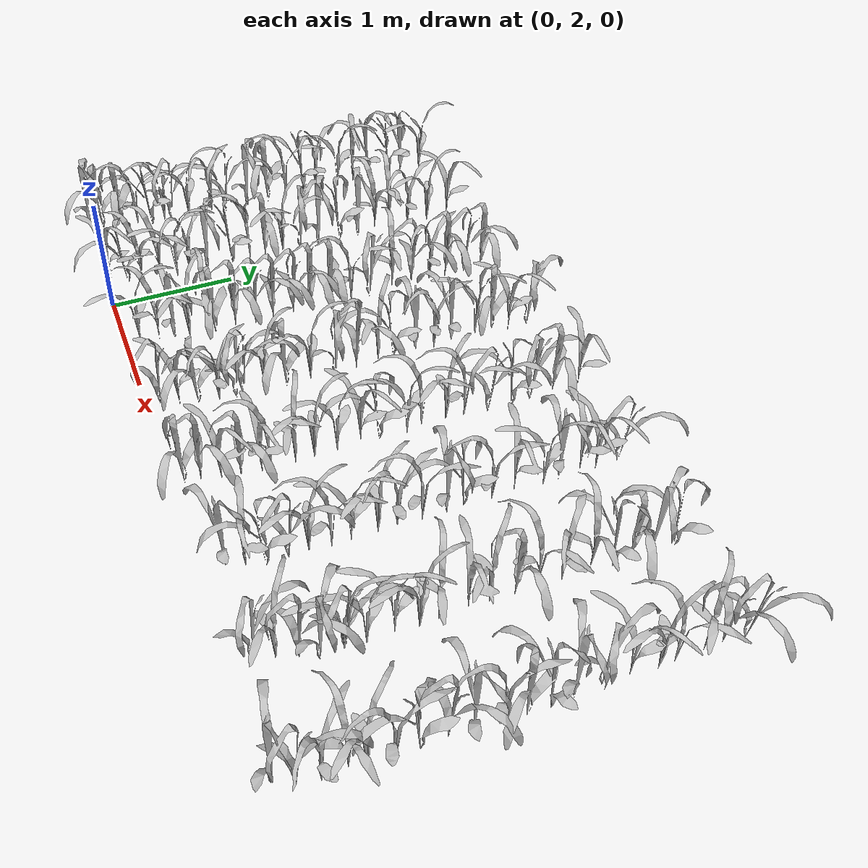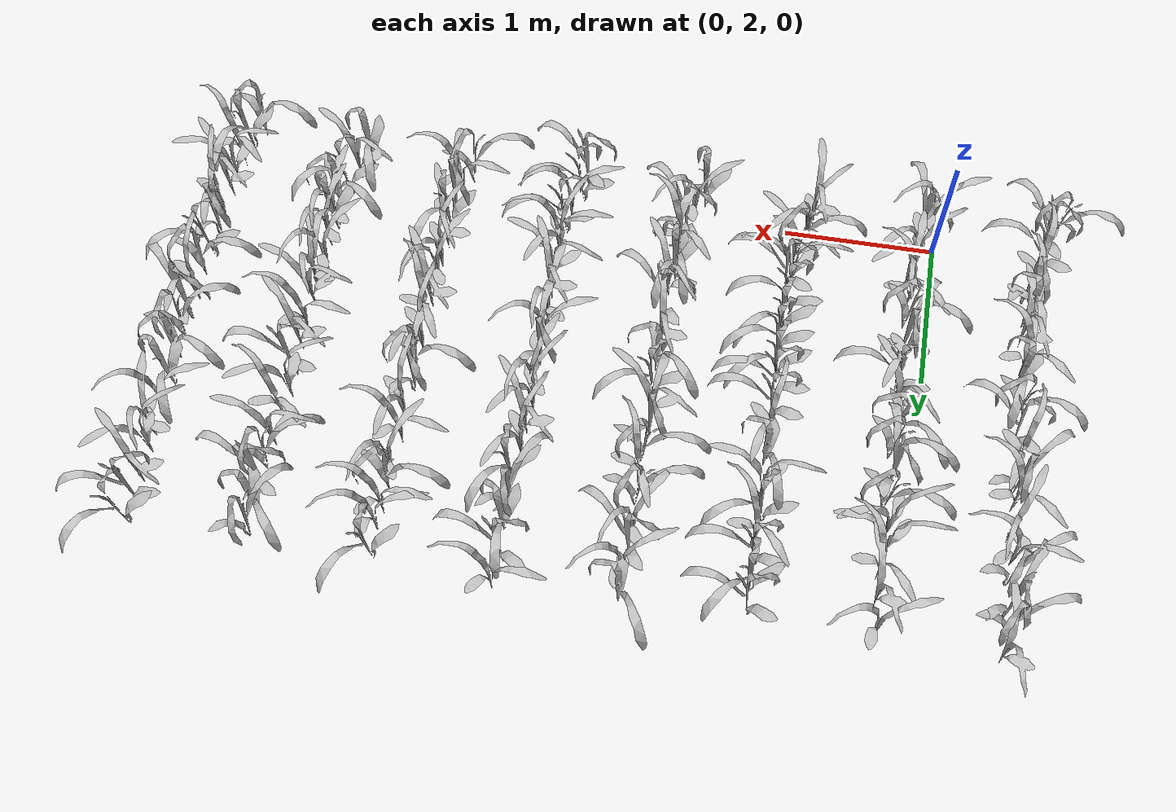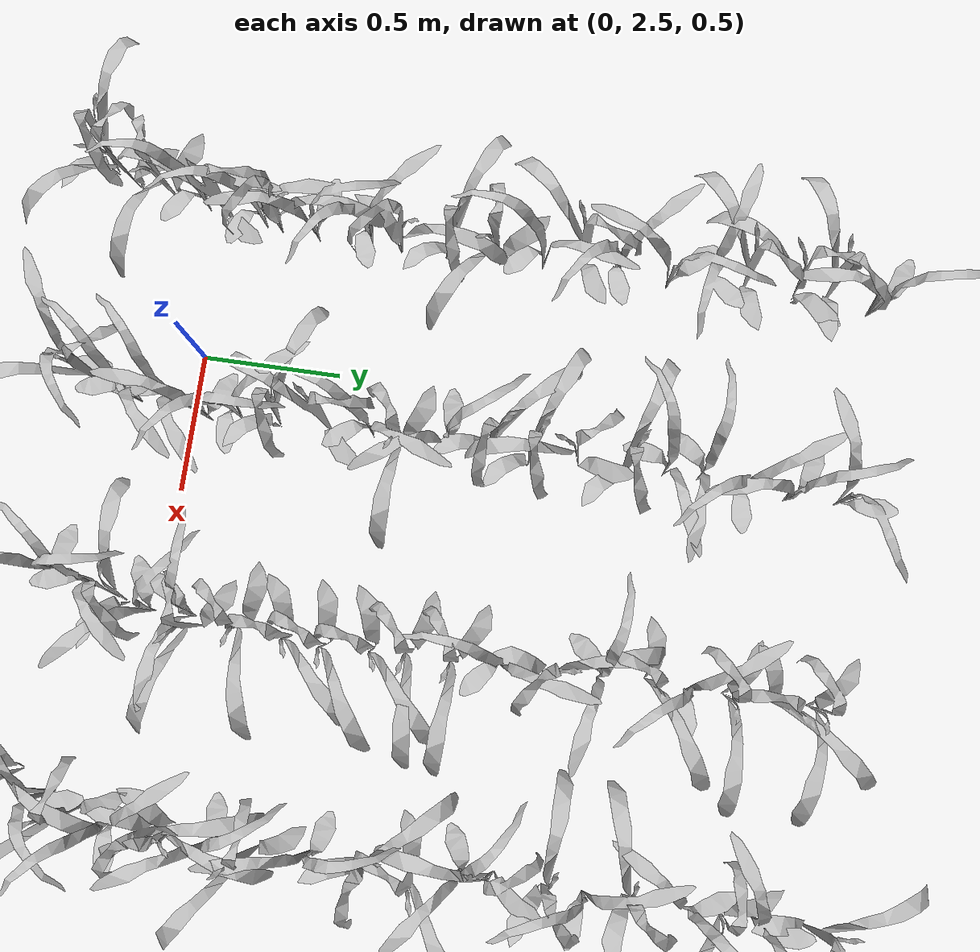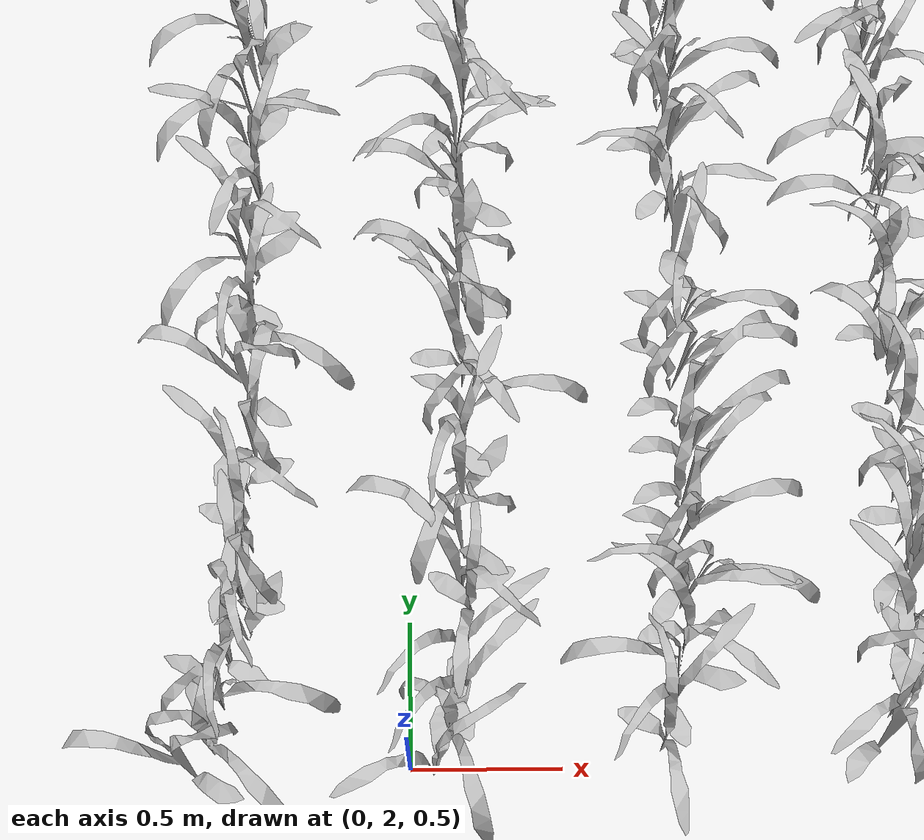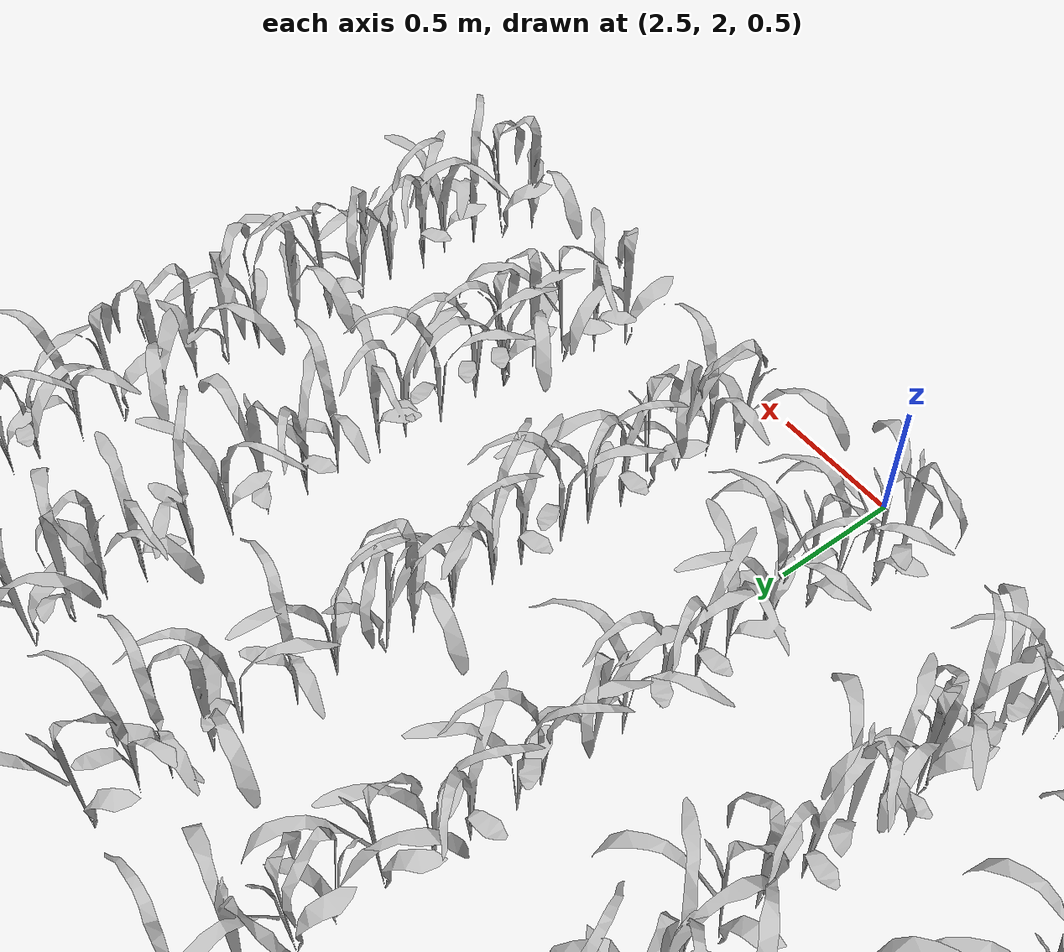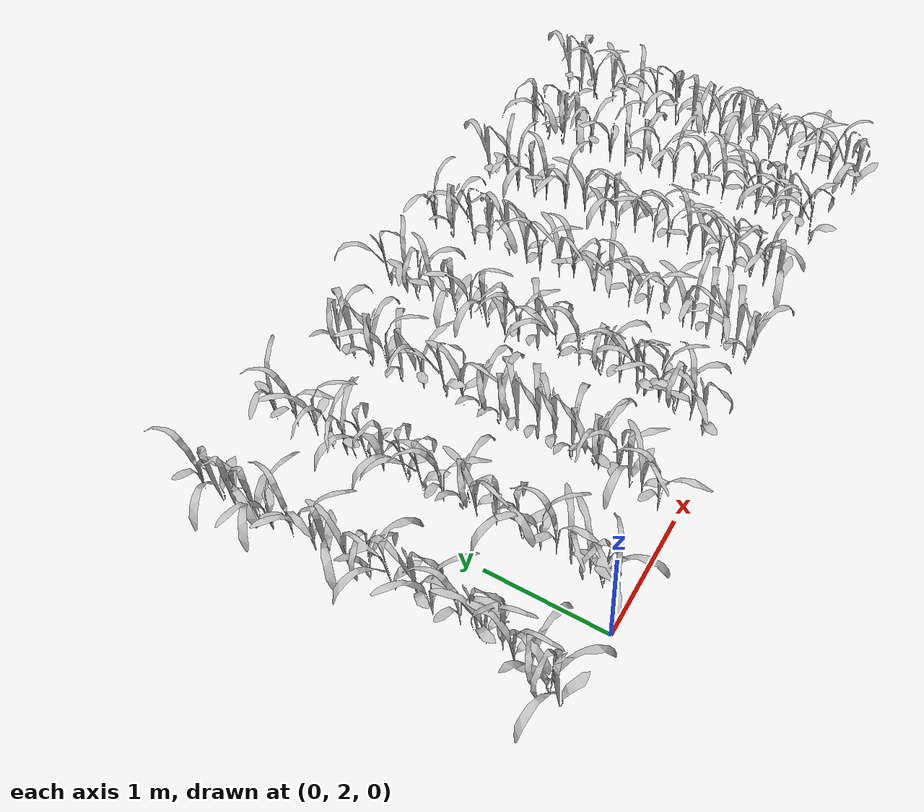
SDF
<sdf version="1.6">
 <world name="default">
  <include>
   <uri>model://maize_01</uri>
   <pose>-0.7104168748805322 2.0063185588696855 0.3010633590603995 0.0 0.0 3.7684076181271933</pose>
   <name>maize_01_0268</name>
   <static>true</static>
  </include>
  <include>
   <uri>model://maize_01</uri>
   <pose>-0.6669237764281026 2.096829508892172 0.3010633590603995 0.0 0.0 6.258730410717391</pose>
   <name>maize_01_0269</name>
   <static>true</static>
  </include>
  <include>
   <uri>model://maize_01</uri>
   <pose>-0.6391963472273512 2.2519567084628735 0.3010633590603995 0.0 0.0 0.6030754324325011</pose>
   <name>maize_01_0270</name>
   <static>true</static>
  </include>
  <include>
   <uri>model://maize_02</uri>
   <pose>-0.6080819507559225 2.3843249816992382 0.3010633590603995 0.0 0.0 3.6879440757164343</pose>
   <name>maize_02_0271</name>
   <static>true</static>
  </include>
  <include>
   <uri>model://maize_01</uri>
   <pose>-0.5637190190671053 2.496584956805511 0.3010633590603995 0.0 0.0 5.22597457695678</pose>
   <name>maize_01_0272</name>
   <static>true</static>
  </include>
  <include>
   <uri>model://maize_02</uri>
   <pose>-0.5755097761306722 2.6089903518456476 0.3010633590603995 0.0 0.0 3.8904030261536358</pose>
   <name>maize_02_0273</name>
   <static>true</static>
  </include>
  <include>
   <uri>model://maize_01</uri>
   <pose>-0.5633656847608133 2.66923461378275 0.3010633590603995 0.0 0.0 2.32956203903306</pose>
   <name>maize_01_0274</name>
   <static>true</static>
  </include>
  <include>
   <uri>model://maize_02</uri>
   <pose>-0.5532574011716205 2.8142239306333354 0.30074714917522627 0.0 0.0 0.767674930427045</pose>
   <name>maize_02_0275</name>
   <static>true</static>
  </include>
  <include>
   <uri>model://maize_02</uri>
   <pose>-0.5694372217213404 3.017604965068602 0.30074714917522627 0.0 0.0 4.564268487871051</pose>
   <name>maize_02_0276</name>
   <static>true</static>
  </include>
  <include>
   <uri>model://maize_01</uri>
   <pose>-0.5434452594882406 3.136102062432505 0.30074714917522627 0.0 0.0 2.189472245221957</pose>
   <name>maize_01_0277</name>
   <static>true</static>
  </include>
  <include>
   <uri>model://maize_01</uri>
   <pose>-0.5469666606167201 3.3327189906338064 0.30074714917522627 0.0 0.0 3.5292269398621445</pose>
   <name>maize_01_0278</name>
   <static>true</static>
  </include>
  <include>
   <uri>model://maize_01</uri>
   <pose>-0.5553727999207514 3.5139043821364724 0.30074714917522627 0.0 0.0 0.2592390515390904</pose>
   <name>maize_01_0279</name>
   <static>true</static>
  </include>
  <include>
   <uri>model://maize_02</uri>
   <pose>-0.5632371757496302 3.679780825754396 0.30041964803791277 0.0 0.0 3.504077575110449</pose>
   <name>maize_02_0280</name>
   <static>true</static>
  </include>
  <include>
   <uri>model://maize_01</uri>
   <pose>-0.570478753203626 3.843828672415269 0.30041964803791277 0.0 0.0 4.749446662765805</pose>
   <name>maize_01_0281</name>
   <static>true</static>
  </include>
  <include>
   <uri>model://maize_02</uri>
   <pose>-0.5630768682914515 3.9588142486000018 0.30041964803791277 0.0 0.0 4.538791601472109</pose>
   <name>maize_02_0282</name>
   <static>true</static>
  </include>
  <include>
   <uri>model://maize_02</uri>
   <pose>-0.5516770795695114 4.156261171388559 0.30041964803791277 0.0 0.0 0.24420177757637626</pose>
   <name>maize_02_0283</name>
   <static>true</static>
  </include>
  <include>
   <uri>model://maize_02</uri>
   <pose>-0.5759459646778782 4.307883810789594 0.3008106686263826 0.0 0.0 5.055452928544781</pose>
   <name>maize_02_0284</name>
   <static>true</static>
  </include>
  <include>
   <uri>model://maize_01</uri>
   <pose>-0.5628849523354511 4.443718959324457 0.3008106686263826 0.0 0.0 4.55190990658463</pose>
   <name>maize_01_0285</name>
   <static>true</static>
  </include>
  <include>
   <uri>model://maize_01</uri>
   <pose>-0.5666547450391801 4.637151082916413 0.3008106686263826 0.0 0.0 5.088720340446874</pose>
   <name>maize_01_0286</name>
   <static>true</static>
  </include>
  <include>
   <uri>model://maize_01</uri>
   <pose>-0.5622938106335915 4.754447205869603 0.3008106686263826 0.0 0.0 4.337687330857094</pose>
   <name>maize_01_0287</name>
   <static>true</static>
  </include>
  <include>
   <uri>model://maize_02</uri>
   <pose>-0.5493978529502057 4.9251124244032205 0.2994590075733109 0.0 0.0 0.6869890573650961</pose>
   <name>maize_02_0288</name>
   <static>true</static>
  </include>
  <include>
   <uri>model://maize_02</uri>
   <pose>0.07364542335664506 2.0201080784856766 0.300323468426876 0.0 0.0 5.780354158975591</pose>
   <name>maize_02_0341</name>
   <static>true</static>
  </include>
  <include>
   <uri>model://maize_01</uri>
   <pose>0.1293928268966316 2.1422616085747674 0.300323468426876 0.0 0.0 5.785073879324697</pose>
   <name>maize_01_0342</name>
   <static>true</static>
  </include>
  <include>
   <uri>model://maize_02</uri>
   <pose>0.16631761949525162 2.2531739653369827 0.300323468426876 0.0 0.0 2.9564192831522313</pose>
   <name>maize_02_0343</name>
   <static>true</static>
  </include>
  <include>
   <uri>model://maize_02</uri>
   <pose>0.16880439795076121 2.39954708689957 0.300323468426876 0.0 0.0 2.7979902014193665</pose>
   <name>maize_02_0344</name>
   <static>true</static>
  </include>
  <include>
   <uri>model://maize_02</uri>
   <pose>0.19993727220433913 2.5301237698677324 0.300323468426876 0.0 0.0 0.5076738311743865</pose>
   <name>maize_02_0345</name>
   <static>true</static>
  </include>
  <include>
   <uri>model://maize_02</uri>
   <pose>0.17681815629607403 2.6400719484024315 0.300323468426876 0.0 0.0 4.4437352961948715</pose>
   <name>maize_02_0346</name>
   <static>true</static>
  </include>
  <include>
   <uri>model://maize_01</uri>
   <pose>0.18464876392405374 2.788223505292548 0.300323468426876 0.0 0.0 3.5657900557942437</pose>
   <name>maize_01_0347</name>
   <static>true</static>
  </include>
  <include>
   <uri>model://maize_01</uri>
   <pose>0.1835941995213133 2.990317470487524 0.300323468426876 0.0 0.0 5.102680733913312</pose>
   <name>maize_01_0348</name>
   <static>true</static>
  </include>
  <include>
   <uri>model://maize_02</uri>
   <pose>0.17875782819366995 3.1417943618442377 0.300323468426876 0.0 0.0 3.360407737718987</pose>
   <name>maize_02_0349</name>
   <static>true</static>
  </include>
  <include>
   <uri>model://maize_01</uri>
   <pose>0.19723953512701867 3.2639004083725944 0.300323468426876 0.0 0.0 0.7524924243371667</pose>
   <name>maize_01_0350</name>
   <static>true</static>
  </include>
  <include>
   <uri>model://maize_02</uri>
   <pose>0.18504524265489833 3.419030219604372 0.300323468426876 0.0 0.0 1.1738430190266311</pose>
   <name>maize_02_0351</name>
   <static>true</static>
  </include>
  <include>
   <uri>model://maize_01</uri>
   <pose>0.17652185067002327 3.5767140693248476 0.300323468426876 0.0 0.0 3.134169742714085</pose>
   <name>maize_01_0352</name>
   <static>true</static>
  </include>
  <include>
   <uri>model://maize_01</uri>
   <pose>0.20101225586346752 3.729420715057968 0.300323468426876 0.0 0.0 3.551281761742024</pose>
   <name>maize_01_0353</name>
   <static>true</static>
  </include>
  <include>
   <uri>model://maize_01</uri>
   <pose>0.17688097386044868 3.915859319539163 0.300323468426876 0.0 0.0 5.6563190226773585</pose>
   <name>maize_01_0354</name>
   <static>true</static>
  </include>
  <include>
   <uri>model://maize_01</uri>
   <pose>0.20768754038693496 4.074686292607202 0.30162232631317165 0.0 0.0 3.6394106442904897</pose>
   <name>maize_01_0355</name>
   <static>true</static>
  </include>
  <include>
   <uri>model://maize_02</uri>
   <pose>0.1727384290280687 4.229571016372324 0.30162232631317165 0.0 0.0 2.5417518617017567</pose>
   <name>maize_02_0356</name>
   <static>true</static>
  </include>
  <include>
   <uri>model://maize_02</uri>
   <pose>0.17487892178403744 4.3556441452405394 0.30162232631317165 0.0 0.0 2.0825873800725985</pose>
   <name>maize_02_0357</name>
   <static>true</static>
  </include>
  <include>
   <uri>model://maize_02</uri>
   <pose>0.2038096352124217 4.516729495424613 0.30162232631317165 0.0 0.0 4.338660429485556</pose>
   <name>maize_02_0358</name>
   <static>true</static>
  </include>
  <include>
   <uri>model://maize_02</uri>
   <pose>0.200739796976978 4.6913755121446545 0.30162232631317165 0.0 0.0 0.8516246777818097</pose>
   <name>maize_02_0359</name>
   <static>true</static>
  </include>
  <include>
   <uri>model://maize_02</uri>
   <pose>0.18971544738004978 4.880112229279497 0.30162232631317165 0.0 0.0 5.698829630777716</pose>
   <name>maize_02_0360</name>
   <static>true</static>
  </include>
  <include>
   <uri>model://maize_02</uri>
   <pose>0.8363458785067344 2.0837414664773894 0.300992767274991 0.0 0.0 0.70085824550902</pose>
   <name>maize_02_0414</name>
   <static>true</static>
  </include>
  <include>
   <uri>model://maize_02</uri>
   <pose>0.8712915556882235 2.2241604800575554 0.300992767274991 0.0 0.0 2.968559835449566</pose>
   <name>maize_02_0415</name>
   <static>true</static>
  </include>
  <include>
   <uri>model://maize_01</uri>
   <pose>0.9148934773690349 2.341326980028653 0.300992767274991 0.0 0.0 3.9450177654094025</pose>
   <name>maize_01_0416</name>
   <static>true</static>
  </include>
  <include>
   <uri>model://maize_02</uri>
   <pose>0.9336672087993383 2.4449961792568886 0.300992767274991 0.0 0.0 1.4074414380528006</pose>
   <name>maize_02_0417</name>
   <static>true</static>
  </include>
  <include>
   <uri>model://maize_02</uri>
   <pose>0.9329287198982701 2.593125786323888 0.300992767274991 0.0 0.0 2.0575773886699467</pose>
   <name>maize_02_0418</name>
   <static>true</static>
  </include>
  <include>
   <uri>model://maize_01</uri>
   <pose>0.9578020512220504 2.6377358002163525 0.300992767274991 0.0 0.0 0.5092241854526922</pose>
   <name>maize_01_0419</name>
   <static>true</static>
  </include>
  <include>
   <uri>model://maize_01</uri>
   <pose>0.9270206925219371 2.804173657964365 0.300992767274991 0.0 0.0 1.0278185108340143</pose>
   <name>maize_01_0420</name>
   <static>true</static>
  </include>
  <include>
   <uri>model://maize_01</uri>
   <pose>0.9510903033823002 2.959256189680105 0.300992767274991 0.0 0.0 1.595993399388448</pose>
   <name>maize_01_0421</name>
   <static>true</static>
  </include>
  <include>
   <uri>model://maize_01</uri>
   <pose>0.9582260329219288 3.097377151994604 0.300992767274991 0.0 0.0 1.3345423582682119</pose>
   <name>maize_01_0422</name>
   <static>true</static>
  </include>
  <include>
   <uri>model://maize_01</uri>
   <pose>0.9510803217539203 3.265605042007057 0.300992767274991 0.0 0.0 1.52404487840565</pose>
   <name>maize_01_0423</name>
   <static>true</static>
  </include>
  <include>
   <uri>model://maize_01</uri>
   <pose>0.9362755961553837 3.4068718374367877 0.300992767274991 0.0 0.0 0.890354288860797</pose>
   <name>maize_01_0424</name>
   <static>true</static>
  </include>
  <include>
   <uri>model://maize_01</uri>
   <pose>0.9431905243144942 3.5708901814026377 0.300992767274991 0.0 0.0 0.7377962141812818</pose>
   <name>maize_01_0425</name>
   <static>true</static>
  </include>
  <include>
   <uri>model://maize_02</uri>
   <pose>0.9583513194561355 3.7382319026638293 0.300992767274991 0.0 0.0 3.5287913728830484</pose>
   <name>maize_02_0426</name>
   <static>true</static>
  </include>
  <include>
   <uri>model://maize_01</uri>
   <pose>0.9589636739570551 3.8931705867131723 0.300992767274991 0.0 0.0 2.6500284009006982</pose>
   <name>maize_01_0427</name>
   <static>true</static>
  </include>
  <include>
   <uri>model://maize_02</uri>
   <pose>0.9462167446885281 4.083608649958002 0.300992767274991 0.0 0.0 1.9863143920507695</pose>
   <name>maize_02_0428</name>
   <static>true</static>
  </include>
  <include>
   <uri>model://maize_01</uri>
   <pose>0.9257503246203214 4.257875617707617 0.300992767274991 0.0 0.0 1.3364252547040298</pose>
   <name>maize_01_0429</name>
   <static>true</static>
  </include>
  <include>
   <uri>model://maize_02</uri>
   <pose>0.9493475081556884 4.405960967393909 0.300992767274991 0.0 0.0 4.363994275003478</pose>
   <name>maize_02_0430</name>
   <static>true</static>
  </include>
  <include>
   <uri>model://maize_01</uri>
   <pose>0.9384889342674192 4.543840934566861 0.300992767274991 0.0 0.0 0.8068249195049768</pose>
   <name>maize_01_0431</name>
   <static>true</static>
  </include>
  <include>
   <uri>model://maize_01</uri>
   <pose>0.9406538174400365 4.710556520415427 0.300992767274991 0.0 0.0 1.6978769974500503</pose>
   <name>maize_01_0432</name>
   <static>true</static>
  </include>
  <include>
   <uri>model://maize_01</uri>
   <pose>0.9380880715804334 4.854374548354171 0.300992767274991 0.0 0.0 0.6437592090596059</pose>
   <name>maize_01_0433</name>
   <static>true</static>
  </include>
  <include>
   <uri>model://maize_01</uri>
   <pose>1.5602195476097325 2.0714629128587405 0.3013609543107844 0.0 0.0 2.0127433765495826</pose>
   <name>maize_01_0486</name>
   <static>true</static>
  </include>
  <include>
   <uri>model://maize_02</uri>
   <pose>1.6215955020937158 2.1999717181498446 0.3013609543107844 0.0 0.0 5.989329251129361</pose>
   <name>maize_02_0487</name>
   <static>true</static>
  </include>
  <include>
   <uri>model://maize_01</uri>
   <pose>1.6471479987580444 2.3292954383298876 0.3013609543107844 0.0 0.0 0.019492922462307476</pose>
   <name>maize_01_0488</name>
   <static>true</static>
  </include>
  <include>
   <uri>model://maize_02</uri>
   <pose>1.6798143162664416 2.478473420428245 0.3013609543107844 0.0 0.0 4.432359929596388</pose>
   <name>maize_02_0489</name>
   <static>true</static>
  </include>
  <include>
   <uri>model://maize_01</uri>
   <pose>1.6879844724902149 2.6036612883436354 0.3013609543107844 0.0 0.0 2.6146994488372464</pose>
   <name>maize_01_0490</name>
   <static>true</static>
  </include>
  <include>
   <uri>model://maize_01</uri>
   <pose>1.6803513913139827 2.6557236267514948 0.3013609543107844 0.0 0.0 2.1503736251674317</pose>
   <name>maize_01_0491</name>
   <static>true</static>
  </include>
  <include>
   <uri>model://maize_02</uri>
   <pose>1.7001342853329724 2.8147739899684274 0.3013609543107844 0.0 0.0 1.1171846914633659</pose>
   <name>maize_02_0492</name>
   <static>true</static>
  </include>
  <include>
   <uri>model://maize_01</uri>
   <pose>1.6989103713093374 2.9713896532086097 0.3013609543107844 0.0 0.0 0.171838814962608</pose>
   <name>maize_01_0493</name>
   <static>true</static>
  </include>
  <include>
   <uri>model://maize_02</uri>
   <pose>1.6934621932006564 3.158188269058846 0.3013609543107844 0.0 0.0 0.8123987479847689</pose>
   <name>maize_02_0494</name>
   <static>true</static>
  </include>
  <include>
   <uri>model://maize_01</uri>
   <pose>1.7065786839318526 3.3483331659591884 0.3013609543107844 0.0 0.0 3.120518234434648</pose>
   <name>maize_01_0495</name>
   <static>true</static>
  </include>
  <include>
   <uri>model://maize_01</uri>
   <pose>1.6941038506939055 3.512753679521851 0.3013609543107844 0.0 0.0 1.3838650301067366</pose>
   <name>maize_01_0496</name>
   <static>true</static>
  </include>
  <include>
   <uri>model://maize_02</uri>
   <pose>1.6826098304756136 3.6877197908172605 0.3013609543107844 0.0 0.0 1.5107608339020562</pose>
   <name>maize_02_0497</name>
   <static>true</static>
  </include>
  <include>
   <uri>model://maize_01</uri>
   <pose>1.6771345326967093 3.8102948305150126 0.3013609543107844 0.0 0.0 5.380760176099552</pose>
   <name>maize_01_0498</name>
   <static>true</static>
  </include>
  <include>
   <uri>model://maize_01</uri>
   <pose>1.6980751164224361 3.9844013701489165 0.3013609543107844 0.0 0.0 3.8965848912022993</pose>
   <name>maize_01_0499</name>
   <static>true</static>
  </include>
  <include>
   <uri>model://maize_02</uri>
   <pose>1.700111021065896 4.130713171376669 0.3013609543107844 0.0 0.0 4.081393159428251</pose>
   <name>maize_02_0500</name>
   <static>true</static>
  </include>
  <include>
   <uri>model://maize_01</uri>
   <pose>1.6938342060984037 4.274596302998317 0.3013609543107844 0.0 0.0 4.1951085025533565</pose>
   <name>maize_01_0501</name>
   <static>true</static>
  </include>
  <include>
   <uri>model://maize_02</uri>
   <pose>1.6780194419346006 4.475502581805452 0.3011364585401316 0.0 0.0 0.025730370867619753</pose>
   <name>maize_02_0502</name>
   <static>true</static>
  </include>
  <include>
   <uri>model://maize_01</uri>
   <pose>1.675018182369956 4.607881260018429 0.3011364585401316 0.0 0.0 0.14270533930475604</pose>
   <name>maize_01_0503</name>
   <static>true</static>
  </include>
  <include>
   <uri>model://maize_02</uri>
   <pose>1.7057142400557932 4.740161540445273 0.3011364585401316 0.0 0.0 5.844907593803765</pose>
   <name>maize_02_0504</name>
   <static>true</static>
  </include>
  <include>
   <uri>model://maize_01</uri>
   <pose>1.7010762602000937 4.903258112444556 0.3011364585401316 0.0 0.0 2.8749429636066237</pose>
   <name>maize_01_0505</name>
   <static>true</static>
  </include>
  <include>
   <uri>model://maize_01</uri>
   <pose>2.3423137837292662 2.0535151971917194 0.3032997890004304 0.0 0.0 0.29390461074623586</pose>
   <name>maize_01_0559</name>
   <static>true</static>
  </include>
  <include>
   <uri>model://maize_01</uri>
   <pose>2.362089666530081 2.160627571302171 0.3032997890004304 0.0 0.0 1.145803939564394</pose>
   <name>maize_01_0560</name>
   <static>true</static>
  </include>
  <include>
   <uri>model://maize_02</uri>
   <pose>2.422271476706517 2.2932217541329902 0.3032997890004304 0.0 0.0 5.710560207893616</pose>
   <name>maize_02_0561</name>
   <static>true</static>
  </include>
  <include>
   <uri>model://maize_01</uri>
   <pose>2.433596857984342 2.419313098458677 0.3032997890004304 0.0 0.0 1.1265562695608653</pose>
   <name>maize_01_0562</name>
   <static>true</static>
  </include>
  <include>
   <uri>model://maize_02</uri>
   <pose>2.4591906116075277 2.5641251722957956 0.3032997890004304 0.0 0.0 5.388719788674561</pose>
   <name>maize_02_0563</name>
   <static>true</static>
  </include>
  <include>
   <uri>model://maize_02</uri>
   <pose>2.436343895640271 2.6296503899703993 0.3032997890004304 0.0 0.0 3.262319828876922</pose>
   <name>maize_02_0564</name>
   <static>true</static>
  </include>
  <include>
   <uri>model://maize_02</uri>
   <pose>2.439731248532472 2.8026352507063597 0.3032997890004304 0.0 0.0 1.757302568753552</pose>
   <name>maize_02_0565</name>
   <static>true</static>
  </include>
  <include>
   <uri>model://maize_02</uri>
   <pose>2.4408052719099755 2.9382995776183187 0.3032997890004304 0.0 0.0 1.0050680076198222</pose>
   <name>maize_02_0566</name>
   <static>true</static>
  </include>
  <include>
   <uri>model://maize_02</uri>
   <pose>2.4352562829801796 3.1043750077841215 0.3032997890004304 0.0 0.0 0.4461111006573932</pose>
   <name>maize_02_0567</name>
   <static>true</static>
  </include>
  <include>
   <uri>model://maize_02</uri>
   <pose>2.4286364278572696 3.2795723195251996 0.3032997890004304 0.0 0.0 5.738034122153873</pose>
   <name>maize_02_0568</name>
   <static>true</static>
  </include>
  <include>
   <uri>model://maize_01</uri>
   <pose>2.429647007203088 3.41326214239847 0.3032997890004304 0.0 0.0 5.4682400974178</pose>
   <name>maize_01_0569</name>
   <static>true</static>
  </include>
  <include>
   <uri>model://maize_02</uri>
   <pose>2.4445656799494513 3.614603594293366 0.3032997890004304 0.0 0.0 0.2642404005176759</pose>
   <name>maize_02_0570</name>
   <static>true</static>
  </include>
  <include>
   <uri>model://maize_02</uri>
   <pose>2.4225842131998983 3.7312534966801345 0.3032997890004304 0.0 0.0 3.117619862766282</pose>
   <name>maize_02_0571</name>
   <static>true</static>
  </include>
  <include>
   <uri>model://maize_02</uri>
   <pose>2.4256695879243475 3.9156606072055635 0.3032997890004304 0.0 0.0 1.2286668493275774</pose>
   <name>maize_02_0572</name>
   <static>true</static>
  </include>
  <include>
   <uri>model://maize_02</uri>
   <pose>2.439229788027718 4.049606898546498 0.30268325544912694 0.0 0.0 3.277347799330147</pose>
   <name>maize_02_0573</name>
   <static>true</static>
  </include>
  <include>
   <uri>model://maize_01</uri>
   <pose>2.4594714023059785 4.226612281978737 0.30268325544912694 0.0 0.0 1.8784439516647151</pose>
   <name>maize_01_0574</name>
   <static>true</static>
  </include>
  <include>
   <uri>model://maize_01</uri>
   <pose>2.44974171108544 4.416177384274821 0.30268325544912694 0.0 0.0 5.021085677108823</pose>
   <name>maize_01_0575</name>
   <static>true</static>
  </include>
  <include>
   <uri>model://maize_01</uri>
   <pose>2.4484050306108704 4.563406380973641 0.30268325544912694 0.0 0.0 2.4684077179487764</pose>
   <name>maize_01_0576</name>
   <static>true</static>
  </include>
  <include>
   <uri>model://maize_01</uri>
   <pose>2.420499567851583 4.754536868979349 0.30268325544912694 0.0 0.0 0.5827147391072635</pose>
   <name>maize_01_0577</name>
   <static>true</static>
  </include>
  <include>
   <uri>model://maize_02</uri>
   <pose>2.4467210883509205 4.947138788932328 0.3016738087952856 0.0 0.0 5.198931096704606</pose>
   <name>maize_02_0578</name>
   <static>true</static>
  </include>
  <include>
   <uri>model://maize_01</uri>
   <pose>3.1124944227048337 2.129087127975103 0.2999252172734692 0.0 0.0 4.229824588388371</pose>
   <name>maize_01_0632</name>
   <static>true</static>
  </include>
  <include>
   <uri>model://maize_02</uri>
   <pose>3.161541903677601 2.245703403434454 0.2999252172734692 0.0 0.0 5.117516107075336</pose>
   <name>maize_02_0633</name>
   <static>true</static>
  </include>
  <include>
   <uri>model://maize_01</uri>
   <pose>3.1843024826920976 2.369414165172697 0.2999252172734692 0.0 0.0 5.511381213313053</pose>
   <name>maize_01_0634</name>
   <static>true</static>
  </include>
  <include>
   <uri>model://maize_01</uri>
   <pose>3.1867545436055744 2.517591216435959 0.2999252172734692 0.0 0.0 1.9879209572790173</pose>
   <name>maize_01_0635</name>
   <static>true</static>
  </include>
  <include>
   <uri>model://maize_02</uri>
   <pose>3.180608359603858 2.651994682604243 0.2999252172734692 0.0 0.0 0.9504130924520721</pose>
   <name>maize_02_0636</name>
   <static>true</static>
  </include>
  <include>
   <uri>model://maize_02</uri>
   <pose>3.1936483671717157 2.800945869054226 0.2999252172734692 0.0 0.0 3.302909174379174</pose>
   <name>maize_02_0637</name>
   <static>true</static>
  </include>
  <include>
   <uri>model://maize_02</uri>
   <pose>3.1860977973637974 2.934814917999248 0.2999252172734692 0.0 0.0 0.10487850303520671</pose>
   <name>maize_02_0638</name>
   <static>true</static>
  </include>
  <include>
   <uri>model://maize_02</uri>
   <pose>3.1882115555662205 3.116685569753566 0.2999252172734692 0.0 0.0 1.1375833748417565</pose>
   <name>maize_02_0639</name>
   <static>true</static>
  </include>
  <include>
   <uri>model://maize_02</uri>
   <pose>3.1872223790880225 3.2508281408431636 0.2999252172734692 0.0 0.0 4.190488136352212</pose>
   <name>maize_02_0640</name>
   <static>true</static>
  </include>
  <include>
   <uri>model://maize_02</uri>
   <pose>3.1899344169283923 3.4237641362884053 0.2999252172734692 0.0 0.0 3.4967623960707663</pose>
   <name>maize_02_0641</name>
   <static>true</static>
  </include>
  <include>
   <uri>model://maize_01</uri>
   <pose>3.191948723876732 3.5980678726347084 0.2999252172734692 0.0 0.0 3.736301775493134</pose>
   <name>maize_01_0642</name>
   <static>true</static>
  </include>
  <include>
   <uri>model://maize_01</uri>
   <pose>3.1743248663972237 3.7222046555777593 0.2999252172734692 0.0 0.0 5.446545799324245</pose>
   <name>maize_01_0643</name>
   <static>true</static>
  </include>
  <include>
   <uri>model://maize_02</uri>
   <pose>3.202130502170303 3.911516475814619 0.2999252172734692 0.0 0.0 3.586167571553715</pose>
   <name>maize_02_0644</name>
   <static>true</static>
  </include>
  <include>
   <uri>model://maize_02</uri>
   <pose>3.1766408217098236 4.088434271691565 0.2999252172734692 0.0 0.0 5.084835844679141</pose>
   <name>maize_02_0645</name>
   <static>true</static>
  </include>
  <include>
   <uri>model://maize_02</uri>
   <pose>3.199805489344942 4.29099866930278 0.2999252172734692 0.0 0.0 0.09820926832064752</pose>
   <name>maize_02_0646</name>
   <static>true</static>
  </include>
  <include>
   <uri>model://maize_01</uri>
   <pose>3.193254050681383 4.410673152338569 0.2999252172734692 0.0 0.0 3.79112280677841</pose>
   <name>maize_01_0647</name>
   <static>true</static>
  </include>
  <include>
   <uri>model://maize_02</uri>
   <pose>3.1887896579031265 4.568863792381276 0.2999252172734692 0.0 0.0 5.1983071626331965</pose>
   <name>maize_02_0648</name>
   <static>true</static>
  </include>
  <include>
   <uri>model://maize_02</uri>
   <pose>3.2050291325762155 4.678859893802715 0.2999252172734692 0.0 0.0 5.608394362829893</pose>
   <name>maize_02_0649</name>
   <static>true</static>
  </include>
  <include>
   <uri>model://maize_01</uri>
   <pose>3.1940007624371978 4.856802276355149 0.2999252172734692 0.0 0.0 1.8524221743563245</pose>
   <name>maize_01_0650</name>
   <static>true</static>
  </include>
  <include>
   <uri>model://maize_01</uri>
   <pose>3.8093829505494066 2.099025199560834 0.30074704596046997 0.0 0.0 2.657707564557024</pose>
   <name>maize_01_0703</name>
   <static>true</static>
  </include>
  <include>
   <uri>model://maize_02</uri>
   <pose>3.857286129109826 2.2237166999511975 0.30074704596046997 0.0 0.0 1.5621035562806</pose>
   <name>maize_02_0704</name>
   <static>true</static>
  </include>
  <include>
   <uri>model://maize_01</uri>
   <pose>3.89846341369572 2.352978122296441 0.30074704596046997 0.0 0.0 1.581258657430119</pose>
   <name>maize_01_0705</name>
   <static>true</static>
  </include>
  <include>
   <uri>model://maize_01</uri>
   <pose>3.948496467480211 2.469989605742446 0.30074704596046997 0.0 0.0 3.3588833041306616</pose>
   <name>maize_01_0706</name>
   <static>true</static>
  </include>
  <include>
   <uri>model://maize_02</uri>
   <pose>3.937798271581936 2.620683897953682 0.30074704596046997 0.0 0.0 0.4947699452046081</pose>
   <name>maize_02_0707</name>
   <static>true</static>
  </include>
  <include>
   <uri>model://maize_01</uri>
   <pose>3.931933234734479 2.6301663118366583 0.30074704596046997 0.0 0.0 2.31726260207326</pose>
   <name>maize_01_0708</name>
   <static>true</static>
  </include>
  <include>
   <uri>model://maize_02</uri>
   <pose>3.9471411541224852 2.7576050096302693 0.30074704596046997 0.0 0.0 0.3984703079137527</pose>
   <name>maize_02_0709</name>
   <static>true</static>
  </include>
  <include>
   <uri>model://maize_02</uri>
   <pose>3.9232338685754256 2.9438025946120665 0.30074704596046997 0.0 0.0 6.2784060841372105</pose>
   <name>maize_02_0710</name>
   <static>true</static>
  </include>
  <include>
   <uri>model://maize_02</uri>
   <pose>3.951357894985891 3.0921618727136466 0.30074704596046997 0.0 0.0 0.8074448843108047</pose>
   <name>maize_02_0711</name>
   <static>true</static>
  </include>
  <include>
   <uri>model://maize_02</uri>
   <pose>3.939910937701723 3.2219439594072203 0.30074704596046997 0.0 0.0 1.8124042701641552</pose>
   <name>maize_02_0712</name>
   <static>true</static>
  </include>
  <include>
   <uri>model://maize_02</uri>
   <pose>3.9379442768226 3.415763066525854 0.30074704596046997 0.0 0.0 5.128052506769074</pose>
   <name>maize_02_0713</name>
   <static>true</static>
  </include>
  <include>
   <uri>model://maize_02</uri>
   <pose>3.9373009377442854 3.555028475519404 0.30074704596046997 0.0 0.0 1.4096387415772962</pose>
   <name>maize_02_0714</name>
   <static>true</static>
  </include>
  <include>
   <uri>model://maize_01</uri>
   <pose>3.9405149382216282 3.7234431918151114 0.30074704596046997 0.0 0.0 0.76334162063513</pose>
   <name>maize_01_0715</name>
   <static>true</static>
  </include>
  <include>
   <uri>model://maize_02</uri>
   <pose>3.9305301048297947 3.885689587139185 0.30074704596046997 0.0 0.0 2.6231617711218664</pose>
   <name>maize_02_0716</name>
   <static>true</static>
  </include>
  <include>
   <uri>model://maize_02</uri>
   <pose>3.942352662490014 4.046753377742869 0.30074704596046997 0.0 0.0 4.611101425968608</pose>
   <name>maize_02_0717</name>
   <static>true</static>
  </include>
  <include>
   <uri>model://maize_02</uri>
   <pose>3.9386815002308864 4.2409761319838 0.30074704596046997 0.0 0.0 1.9981032398574134</pose>
   <name>maize_02_0718</name>
   <static>true</static>
  </include>
  <include>
   <uri>model://maize_01</uri>
   <pose>3.9553337468317085 4.395624949888136 0.30074704596046997 0.0 0.0 4.508016202500511</pose>
   <name>maize_01_0719</name>
   <static>true</static>
  </include>
  <include>
   <uri>model://maize_01</uri>
   <pose>3.9417095586957305 4.525713392597142 0.30074704596046997 0.0 0.0 0.4579115105476156</pose>
   <name>maize_01_0720</name>
   <static>true</static>
  </include>
  <include>
   <uri>model://maize_01</uri>
   <pose>3.938517433744573 4.688300137110746 0.30074704596046997 0.0 0.0 3.0348844208083103</pose>
   <name>maize_01_0721</name>
   <static>true</static>
  </include>
  <include>
   <uri>model://maize_01</uri>
   <pose>3.951170786135408 4.840637430730135 0.30074704596046997 0.0 0.0 4.927205057412077</pose>
   <name>maize_01_0722</name>
   <static>true</static>
  </include>
  <include>
   <uri>model://maize_01</uri>
   <pose>4.581326225368286 1.9814301748398357 0.30007571624242935 0.0 0.0 3.7174845940126966</pose>
   <name>maize_01_0775</name>
   <static>true</static>
  </include>
  <include>
   <uri>model://maize_01</uri>
   <pose>4.634173761747461 2.0986973537077147 0.30007571624242935 0.0 0.0 2.1068250574275056</pose>
   <name>maize_01_0776</name>
   <static>true</static>
  </include>
  <include>
   <uri>model://maize_02</uri>
   <pose>4.660676563429676 2.2334862419042385 0.30007571624242935 0.0 0.0 4.5416947876520375</pose>
   <name>maize_02_0777</name>
   <static>true</static>
  </include>
  <include>
   <uri>model://maize_02</uri>
   <pose>4.666435855858805 2.3819136186946444 0.30007571624242935 0.0 0.0 2.3114867457751176</pose>
   <name>maize_02_0778</name>
   <static>true</static>
  </include>
  <include>
   <uri>model://maize_02</uri>
   <pose>4.67581625646451 2.4867796485972904 0.30007571624242935 0.0 0.0 1.3067417325010255</pose>
   <name>maize_02_0779</name>
   <static>true</static>
  </include>
  <include>
   <uri>model://maize_02</uri>
   <pose>4.696615917537879 2.6454233076064564 0.30007571624242935 0.0 0.0 3.88543498940624</pose>
   <name>maize_02_0780</name>
   <static>true</static>
  </include>
  <include>
   <uri>model://maize_01</uri>
   <pose>4.676189764009229 2.798340365976396 0.30007571624242935 0.0 0.0 5.6417645540433785</pose>
   <name>maize_01_0781</name>
   <static>true</static>
  </include>
  <include>
   <uri>model://maize_01</uri>
   <pose>4.670930641723383 2.969589444811757 0.30007571624242935 0.0 0.0 1.4546163012114084</pose>
   <name>maize_01_0782</name>
   <static>true</static>
  </include>
  <include>
   <uri>model://maize_01</uri>
   <pose>4.69915998185476 3.113577726089551 0.30007571624242935 0.0 0.0 3.9659485808265953</pose>
   <name>maize_01_0783</name>
   <static>true</static>
  </include>
  <include>
   <uri>model://maize_02</uri>
   <pose>4.6924893868487585 3.29841278953972 0.30007571624242935 0.0 0.0 3.693699213672755</pose>
   <name>maize_02_0784</name>
   <static>true</static>
  </include>
  <include>
   <uri>model://maize_01</uri>
   <pose>4.695037394972878 3.4377037739290057 0.30007571624242935 0.0 0.0 6.276563484088368</pose>
   <name>maize_01_0785</name>
   <static>true</static>
  </include>
  <include>
   <uri>model://maize_01</uri>
   <pose>4.7038746630439485 3.5847950435850913 0.30007571624242935 0.0 0.0 4.460004871851813</pose>
   <name>maize_01_0786</name>
   <static>true</static>
  </include>
  <include>
   <uri>model://maize_01</uri>
   <pose>4.691851656912209 3.740879727267537 0.30007571624242935 0.0 0.0 3.512721352046804</pose>
   <name>maize_01_0787</name>
   <static>true</static>
  </include>
  <include>
   <uri>model://maize_01</uri>
   <pose>4.675827261211077 3.9280826551069894 0.30007571624242935 0.0 0.0 2.710770882543035</pose>
   <name>maize_01_0788</name>
   <static>true</static>
  </include>
  <include>
   <uri>model://maize_02</uri>
   <pose>4.6734352264741394 4.107770923812716 0.30007571624242935 0.0 0.0 5.761804099525367</pose>
   <name>maize_02_0789</name>
   <static>true</static>
  </include>
  <include>
   <uri>model://maize_02</uri>
   <pose>4.697220499840985 4.282172553985074 0.30007571624242935 0.0 0.0 0.8284196223368715</pose>
   <name>maize_02_0790</name>
   <static>true</static>
  </include>
  <include>
   <uri>model://maize_02</uri>
   <pose>4.689811094082365 4.397410578294485 0.30007571624242935 0.0 0.0 2.8449614041683127</pose>
   <name>maize_02_0791</name>
   <static>true</static>
  </include>
  <include>
   <uri>model://maize_02</uri>
   <pose>4.6838419010806644 4.5957762512559714 0.30007571624242935 0.0 0.0 1.4485551913644898</pose>
   <name>maize_02_0792</name>
   <static>true</static>
  </include>
  <include>
   <uri>model://maize_01</uri>
   <pose>4.675122289610049 4.730779069217913 0.30007571624242935 0.0 0.0 1.0700809050081026</pose>
   <name>maize_01_0793</name>
   <static>true</static>
  </include>
  <include>
   <uri>model://maize_01</uri>
   <pose>4.698384064710553 4.871585518143901 0.30007571624242935 0.0 0.0 1.7844328098355402</pose>
   <name>maize_01_0794</name>
   <static>false</static>
  </include>
 </world>
</sdf>
